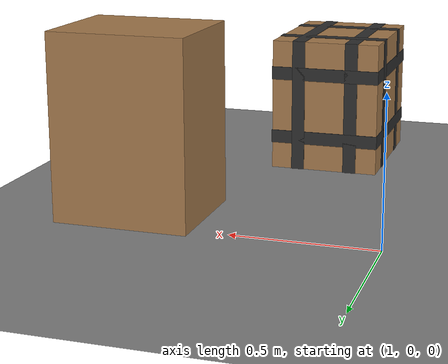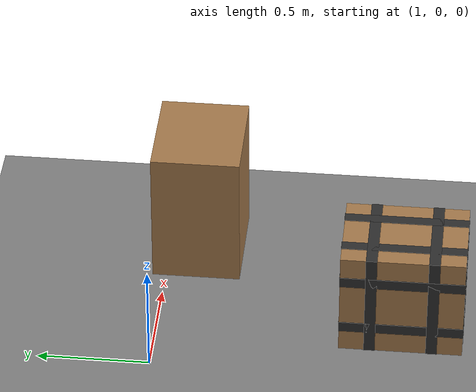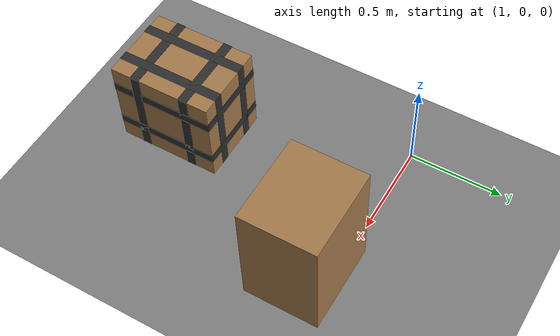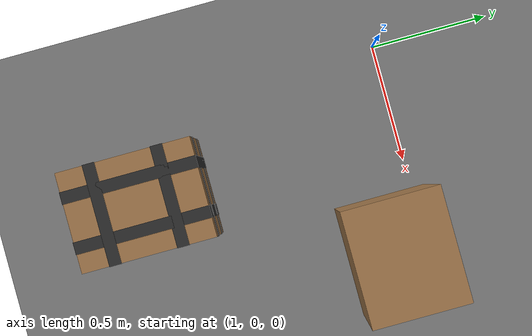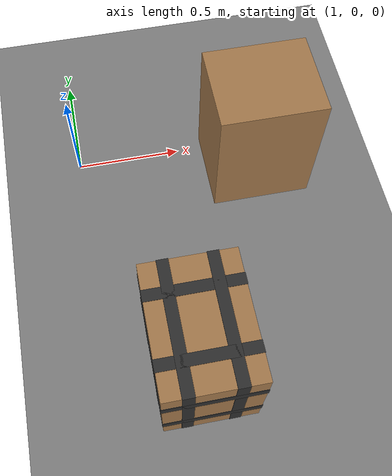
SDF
<sdf version="1.9">
 <world name="ecps295_lowbox_s5_monitor">
  <model name="ground_plane">
   <static>true</static>
   <link name="link">
    <collision name="collision">
     <geometry><plane><normal>0 0 1</normal><size>50 50</size></plane></geometry>
    </collision>
    <visual name="visual">
     <geometry><plane><normal>0 0 1</normal><size>50 50</size></plane></geometry>
     <material><ambient>0.5 0.5 0.5 1</ambient><diffuse>0.5 0.5 0.5 1</diffuse></material>
    </visual>
   </link>
  </model>
  <model name="lb1">
   <static>true</static>
   <pose>1.86 -0.14 0.322 0 0 0</pose>
   <link name="link">
    <collision name="c"><geometry><box><size>0.47 0.4 0.64</size></box></geometry></collision>
    <visual name="v">
     <geometry><box><size>0.47 0.4 0.64</size></box></geometry>
     <material><ambient>0.65 0.48 0.30 1</ambient><diffuse>0.65 0.48 0.30 1</diffuse></material>
    </visual>
   </link>
  </model>
  <model name="lb3">
   <static>true</static>
   <pose>1.39 -1.1 0.249 0 0 0</pose>
   <link name="link">
    <collision name="c"><geometry><box><size>0.41 0.55 0.5</size></box></geometry></collision>
    <visual name="v">
     <geometry><box><size>0.41 0.55 0.5</size></box></geometry>
     <material><ambient>0.65 0.48 0.30 1</ambient><diffuse>0.65 0.48 0.30 1</diffuse></material>
    </visual>
    <visual name="tape_ring0">
     <pose>0.000 0.000 -0.125 0 0 0</pose>
     <geometry><box><size>0.414 0.554 0.050</size></box></geometry>
     <material><ambient>0.18 0.18 0.18 1</ambient><diffuse>0.18 0.18 0.18 1</diffuse></material>
    </visual>
    <visual name="tape_bx0">
     <pose>-0.102 0.000 0.000 0 0 0</pose>
     <geometry><box><size>0.050 0.554 0.504</size></box></geometry>
     <material><ambient>0.18 0.18 0.18 1</ambient><diffuse>0.18 0.18 0.18 1</diffuse></material>
    </visual>
    <visual name="tape_by0">
     <pose>0.000 -0.138 0.000 0 0 0</pose>
     <geometry><box><size>0.414 0.050 0.504</size></box></geometry>
     <material><ambient>0.18 0.18 0.18 1</ambient><diffuse>0.18 0.18 0.18 1</diffuse></material>
    </visual>
    <visual name="tape_ring1">
     <pose>0.000 0.000 0.125 0 0 0</pose>
     <geometry><box><size>0.414 0.554 0.050</size></box></geometry>
     <material><ambient>0.18 0.18 0.18 1</ambient><diffuse>0.18 0.18 0.18 1</diffuse></material>
    </visual>
    <visual name="tape_bx1">
     <pose>0.102 0.000 0.000 0 0 0</pose>
     <geometry><box><size>0.050 0.554 0.504</size></box></geometry>
     <material><ambient>0.18 0.18 0.18 1</ambient><diffuse>0.18 0.18 0.18 1</diffuse></material>
    </visual>
    <visual name="tape_by1">
     <pose>0.000 0.138 0.000 0 0 0</pose>
     <geometry><box><size>0.414 0.050 0.504</size></box></geometry>
     <material><ambient>0.18 0.18 0.18 1</ambient><diffuse>0.18 0.18 0.18 1</diffuse></material>
    </visual>
   </link>
  </model>
 </world>
</sdf>
